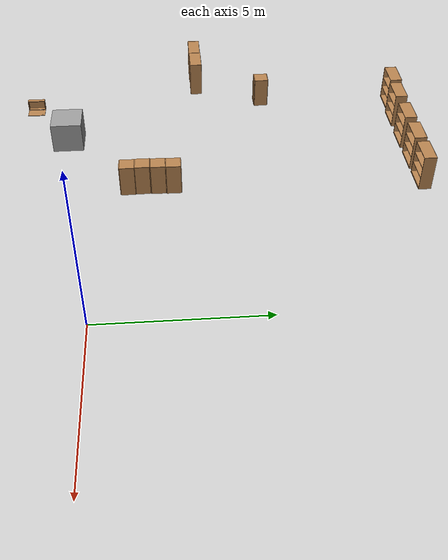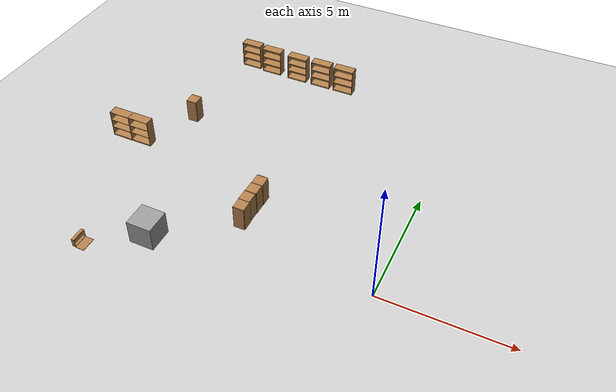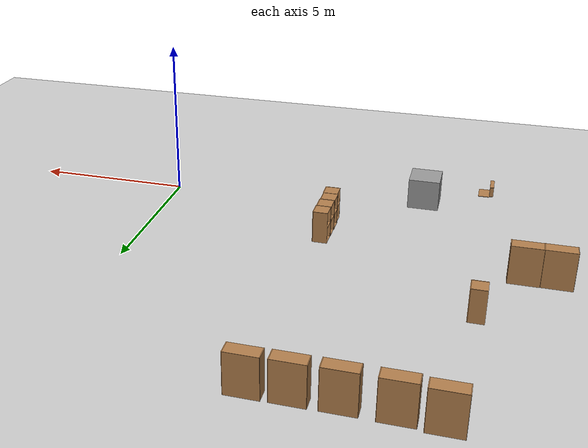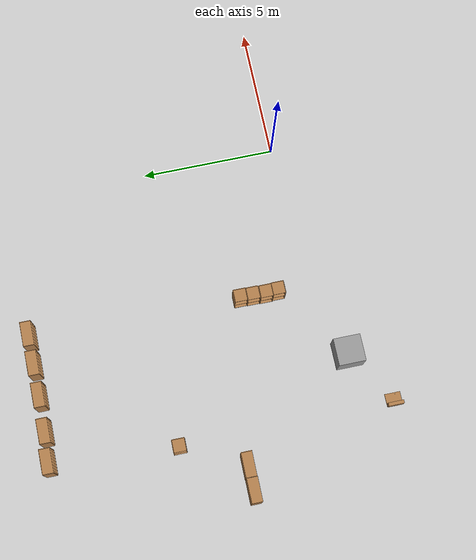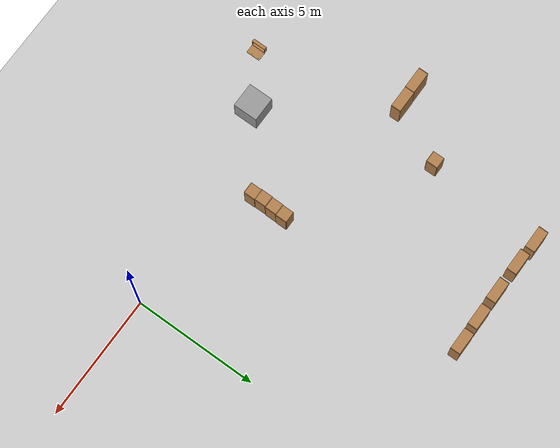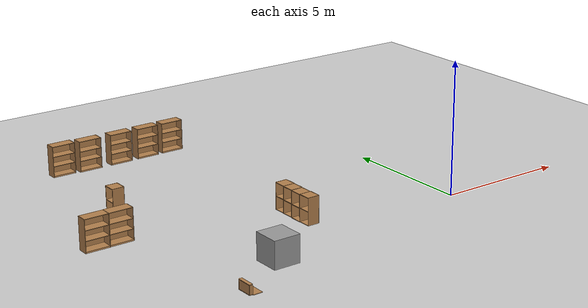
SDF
<sdf version="1.7">
 <world name="default">
  <model name="ground_plane">
   <static>1</static>
   <link name="link">
    <collision name="collision">
     <geometry><plane><normal>0 0 1</normal><size>100 100</size></plane></geometry>
     <surface>
      <contact><collide_bitmask>65535</collide_bitmask></contact>
      <friction><ode><mu>100</mu><mu2>50</mu2></ode></friction>
     </surface>
    </collision>
    <visual name="visual">
     <cast_shadows>0</cast_shadows>
     <geometry><plane><normal>0 0 1</normal><size>100 100</size></plane></geometry>
     <material>
      <script><uri>file://media/materials/scripts/gazebo.material</uri><name>Gazebo/Grey</name></script>
     </material>
    </visual>
   </link>
  </model>
  <model name="bookshelf">
   <static>1</static>
   <link name="link">
    <inertial><mass>1</mass></inertial>
    <collision name="back">
     <pose>0 0.005 0.6 0 -0 0</pose>
     <geometry><box><size>0.9 0.01 1.2</size></box></geometry>
    </collision>
    <visual name="visual1">
     <pose>0 0.005 0.6 0 -0 0</pose>
     <geometry><box><size>0.9 0.01 1.2</size></box></geometry>
     <material>
      <script><uri>file://media/materials/scripts/gazebo.material</uri><name>Gazebo/Wood</name></script>
     </material>
    </visual>
    <collision name="left_side">
     <pose>0.45 -0.195 0.6 0 -0 0</pose>
     <geometry><box><size>0.02 0.4 1.2</size></box></geometry>
    </collision>
    <visual name="visual2">
     <pose>0.45 -0.195 0.6 0 -0 0</pose>
     <geometry><box><size>0.02 0.4 1.2</size></box></geometry>
     <material>
      <script><uri>file://media/materials/scripts/gazebo.material</uri><name>Gazebo/Wood</name></script>
     </material>
    </visual>
    <collision name="right_side">
     <pose>-0.45 -0.195 0.6 0 -0 0</pose>
     <geometry><box><size>0.02 0.4 1.2</size></box></geometry>
    </collision>
    <visual name="visual3">
     <pose>-0.45 -0.195 0.6 0 -0 0</pose>
     <geometry><box><size>0.02 0.4 1.2</size></box></geometry>
     <material>
      <script><uri>file://media/materials/scripts/gazebo.material</uri><name>Gazebo/Wood</name></script>
     </material>
    </visual>
    <collision name="bottom">
     <pose>0 -0.195 0.03 0 -0 0</pose>
     <geometry><box><size>0.88 0.4 0.06</size></box></geometry>
    </collision>
    <visual name="visual4">
     <pose>0 -0.195 0.03 0 -0 0</pose>
     <geometry><box><size>0.88 0.4 0.06</size></box></geometry>
     <material>
      <script><uri>file://media/materials/scripts/gazebo.material</uri><name>Gazebo/Wood</name></script>
     </material>
    </visual>
    <collision name="top">
     <pose>0 -0.195 1.19 0 -0 0</pose>
     <geometry><box><size>0.88 0.4 0.02</size></box></geometry>
    </collision>
    <visual name="visual5">
     <pose>0 -0.195 1.19 0 -0 0</pose>
     <geometry><box><size>0.88 0.4 0.02</size></box></geometry>
     <material>
      <script><uri>file://media/materials/scripts/gazebo.material</uri><name>Gazebo/Wood</name></script>
     </material>
    </visual>
    <collision name="low_shelf">
     <pose>0 -0.195 0.43 0 -0 0</pose>
     <geometry><box><size>0.88 0.4 0.02</size></box></geometry>
    </collision>
    <visual name="visual6">
     <pose>0 -0.195 0.43 0 -0 0</pose>
     <geometry><box><size>0.88 0.4 0.02</size></box></geometry>
     <material>
      <script><uri>file://media/materials/scripts/gazebo.material</uri><name>Gazebo/Wood</name></script>
     </material>
    </visual>
    <collision name="high_shelf">
     <pose>0 -0.195 0.8 0 -0 0</pose>
     <geometry><box><size>0.88 0.4 0.02</size></box></geometry>
    </collision>
    <visual name="visual7">
     <pose>0 -0.195 0.8 0 -0 0</pose>
     <geometry><box><size>0.88 0.4 0.02</size></box></geometry>
     <material>
      <script><uri>file://media/materials/scripts/gazebo.material</uri><name>Gazebo/Wood</name></script>
     </material>
    </visual>
   </link>
   <pose>-10.0788 10.5753 0 0 -0 0</pose>
  </model>
  <model name="bookshelf_0">
   <static>1</static>
   <link name="link">
    <inertial><mass>1</mass></inertial>
    <collision name="back">
     <pose>0 0.005 0.6 0 -0 0</pose>
     <geometry><box><size>0.9 0.01 1.2</size></box></geometry>
    </collision>
    <visual name="visual1">
     <pose>0 0.005 0.6 0 -0 0</pose>
     <geometry><box><size>0.9 0.01 1.2</size></box></geometry>
     <material>
      <script><uri>file://media/materials/scripts/gazebo.material</uri><name>Gazebo/Wood</name></script>
     </material>
    </visual>
    <collision name="left_side">
     <pose>0.45 -0.195 0.6 0 -0 0</pose>
     <geometry><box><size>0.02 0.4 1.2</size></box></geometry>
    </collision>
    <visual name="visual2">
     <pose>0.45 -0.195 0.6 0 -0 0</pose>
     <geometry><box><size>0.02 0.4 1.2</size></box></geometry>
     <material>
      <script><uri>file://media/materials/scripts/gazebo.material</uri><name>Gazebo/Wood</name></script>
     </material>
    </visual>
    <collision name="right_side">
     <pose>-0.45 -0.195 0.6 0 -0 0</pose>
     <geometry><box><size>0.02 0.4 1.2</size></box></geometry>
    </collision>
    <visual name="visual3">
     <pose>-0.45 -0.195 0.6 0 -0 0</pose>
     <geometry><box><size>0.02 0.4 1.2</size></box></geometry>
     <material>
      <script><uri>file://media/materials/scripts/gazebo.material</uri><name>Gazebo/Wood</name></script>
     </material>
    </visual>
    <collision name="bottom">
     <pose>0 -0.195 0.03 0 -0 0</pose>
     <geometry><box><size>0.88 0.4 0.06</size></box></geometry>
    </collision>
    <visual name="visual4">
     <pose>0 -0.195 0.03 0 -0 0</pose>
     <geometry><box><size>0.88 0.4 0.06</size></box></geometry>
     <material>
      <script><uri>file://media/materials/scripts/gazebo.material</uri><name>Gazebo/Wood</name></script>
     </material>
    </visual>
    <collision name="top">
     <pose>0 -0.195 1.19 0 -0 0</pose>
     <geometry><box><size>0.88 0.4 0.02</size></box></geometry>
    </collision>
    <visual name="visual5">
     <pose>0 -0.195 1.19 0 -0 0</pose>
     <geometry><box><size>0.88 0.4 0.02</size></box></geometry>
     <material>
      <script><uri>file://media/materials/scripts/gazebo.material</uri><name>Gazebo/Wood</name></script>
     </material>
    </visual>
    <collision name="low_shelf">
     <pose>0 -0.195 0.43 0 -0 0</pose>
     <geometry><box><size>0.88 0.4 0.02</size></box></geometry>
    </collision>
    <visual name="visual6">
     <pose>0 -0.195 0.43 0 -0 0</pose>
     <geometry><box><size>0.88 0.4 0.02</size></box></geometry>
     <material>
      <script><uri>file://media/materials/scripts/gazebo.material</uri><name>Gazebo/Wood</name></script>
     </material>
    </visual>
    <collision name="high_shelf">
     <pose>0 -0.195 0.8 0 -0 0</pose>
     <geometry><box><size>0.88 0.4 0.02</size></box></geometry>
    </collision>
    <visual name="visual7">
     <pose>0 -0.195 0.8 0 -0 0</pose>
     <geometry><box><size>0.88 0.4 0.02</size></box></geometry>
     <material>
      <script><uri>file://media/materials/scripts/gazebo.material</uri><name>Gazebo/Wood</name></script>
     </material>
    </visual>
   </link>
   <pose>-9.01072 10.5031 0 0 -0 0</pose>
  </model>
  <model name="bookshelf_1">
   <static>1</static>
   <link name="link">
    <inertial><mass>1</mass></inertial>
    <collision name="back">
     <pose>0 0.005 0.6 0 -0 0</pose>
     <geometry><box><size>0.9 0.01 1.2</size></box></geometry>
    </collision>
    <visual name="visual1">
     <pose>0 0.005 0.6 0 -0 0</pose>
     <geometry><box><size>0.9 0.01 1.2</size></box></geometry>
     <material>
      <script><uri>file://media/materials/scripts/gazebo.material</uri><name>Gazebo/Wood</name></script>
     </material>
    </visual>
    <collision name="left_side">
     <pose>0.45 -0.195 0.6 0 -0 0</pose>
     <geometry><box><size>0.02 0.4 1.2</size></box></geometry>
    </collision>
    <visual name="visual2">
     <pose>0.45 -0.195 0.6 0 -0 0</pose>
     <geometry><box><size>0.02 0.4 1.2</size></box></geometry>
     <material>
      <script><uri>file://media/materials/scripts/gazebo.material</uri><name>Gazebo/Wood</name></script>
     </material>
    </visual>
    <collision name="right_side">
     <pose>-0.45 -0.195 0.6 0 -0 0</pose>
     <geometry><box><size>0.02 0.4 1.2</size></box></geometry>
    </collision>
    <visual name="visual3">
     <pose>-0.45 -0.195 0.6 0 -0 0</pose>
     <geometry><box><size>0.02 0.4 1.2</size></box></geometry>
     <material>
      <script><uri>file://media/materials/scripts/gazebo.material</uri><name>Gazebo/Wood</name></script>
     </material>
    </visual>
    <collision name="bottom">
     <pose>0 -0.195 0.03 0 -0 0</pose>
     <geometry><box><size>0.88 0.4 0.06</size></box></geometry>
    </collision>
    <visual name="visual4">
     <pose>0 -0.195 0.03 0 -0 0</pose>
     <geometry><box><size>0.88 0.4 0.06</size></box></geometry>
     <material>
      <script><uri>file://media/materials/scripts/gazebo.material</uri><name>Gazebo/Wood</name></script>
     </material>
    </visual>
    <collision name="top">
     <pose>0 -0.195 1.19 0 -0 0</pose>
     <geometry><box><size>0.88 0.4 0.02</size></box></geometry>
    </collision>
    <visual name="visual5">
     <pose>0 -0.195 1.19 0 -0 0</pose>
     <geometry><box><size>0.88 0.4 0.02</size></box></geometry>
     <material>
      <script><uri>file://media/materials/scripts/gazebo.material</uri><name>Gazebo/Wood</name></script>
     </material>
    </visual>
    <collision name="low_shelf">
     <pose>0 -0.195 0.43 0 -0 0</pose>
     <geometry><box><size>0.88 0.4 0.02</size></box></geometry>
    </collision>
    <visual name="visual6">
     <pose>0 -0.195 0.43 0 -0 0</pose>
     <geometry><box><size>0.88 0.4 0.02</size></box></geometry>
     <material>
      <script><uri>file://media/materials/scripts/gazebo.material</uri><name>Gazebo/Wood</name></script>
     </material>
    </visual>
    <collision name="high_shelf">
     <pose>0 -0.195 0.8 0 -0 0</pose>
     <geometry><box><size>0.88 0.4 0.02</size></box></geometry>
    </collision>
    <visual name="visual7">
     <pose>0 -0.195 0.8 0 -0 0</pose>
     <geometry><box><size>0.88 0.4 0.02</size></box></geometry>
     <material>
      <script><uri>file://media/materials/scripts/gazebo.material</uri><name>Gazebo/Wood</name></script>
     </material>
    </visual>
   </link>
   <pose>-7.70566 10.4883 0 0 -0 0</pose>
  </model>
  <model name="bookshelf_2">
   <static>1</static>
   <link name="link">
    <inertial><mass>1</mass></inertial>
    <collision name="back">
     <pose>0 0.005 0.6 0 -0 0</pose>
     <geometry><box><size>0.9 0.01 1.2</size></box></geometry>
    </collision>
    <visual name="visual1">
     <pose>0 0.005 0.6 0 -0 0</pose>
     <geometry><box><size>0.9 0.01 1.2</size></box></geometry>
     <material>
      <script><uri>file://media/materials/scripts/gazebo.material</uri><name>Gazebo/Wood</name></script>
     </material>
    </visual>
    <collision name="left_side">
     <pose>0.45 -0.195 0.6 0 -0 0</pose>
     <geometry><box><size>0.02 0.4 1.2</size></box></geometry>
    </collision>
    <visual name="visual2">
     <pose>0.45 -0.195 0.6 0 -0 0</pose>
     <geometry><box><size>0.02 0.4 1.2</size></box></geometry>
     <material>
      <script><uri>file://media/materials/scripts/gazebo.material</uri><name>Gazebo/Wood</name></script>
     </material>
    </visual>
    <collision name="right_side">
     <pose>-0.45 -0.195 0.6 0 -0 0</pose>
     <geometry><box><size>0.02 0.4 1.2</size></box></geometry>
    </collision>
    <visual name="visual3">
     <pose>-0.45 -0.195 0.6 0 -0 0</pose>
     <geometry><box><size>0.02 0.4 1.2</size></box></geometry>
     <material>
      <script><uri>file://media/materials/scripts/gazebo.material</uri><name>Gazebo/Wood</name></script>
     </material>
    </visual>
    <collision name="bottom">
     <pose>0 -0.195 0.03 0 -0 0</pose>
     <geometry><box><size>0.88 0.4 0.06</size></box></geometry>
    </collision>
    <visual name="visual4">
     <pose>0 -0.195 0.03 0 -0 0</pose>
     <geometry><box><size>0.88 0.4 0.06</size></box></geometry>
     <material>
      <script><uri>file://media/materials/scripts/gazebo.material</uri><name>Gazebo/Wood</name></script>
     </material>
    </visual>
    <collision name="top">
     <pose>0 -0.195 1.19 0 -0 0</pose>
     <geometry><box><size>0.88 0.4 0.02</size></box></geometry>
    </collision>
    <visual name="visual5">
     <pose>0 -0.195 1.19 0 -0 0</pose>
     <geometry><box><size>0.88 0.4 0.02</size></box></geometry>
     <material>
      <script><uri>file://media/materials/scripts/gazebo.material</uri><name>Gazebo/Wood</name></script>
     </material>
    </visual>
    <collision name="low_shelf">
     <pose>0 -0.195 0.43 0 -0 0</pose>
     <geometry><box><size>0.88 0.4 0.02</size></box></geometry>
    </collision>
    <visual name="visual6">
     <pose>0 -0.195 0.43 0 -0 0</pose>
     <geometry><box><size>0.88 0.4 0.02</size></box></geometry>
     <material>
      <script><uri>file://media/materials/scripts/gazebo.material</uri><name>Gazebo/Wood</name></script>
     </material>
    </visual>
    <collision name="high_shelf">
     <pose>0 -0.195 0.8 0 -0 0</pose>
     <geometry><box><size>0.88 0.4 0.02</size></box></geometry>
    </collision>
    <visual name="visual7">
     <pose>0 -0.195 0.8 0 -0 0</pose>
     <geometry><box><size>0.88 0.4 0.02</size></box></geometry>
     <material>
      <script><uri>file://media/materials/scripts/gazebo.material</uri><name>Gazebo/Wood</name></script>
     </material>
    </visual>
   </link>
   <pose>-6.53518 10.5005 0 0 -0 0</pose>
  </model>
  <model name="bookshelf_3">
   <static>1</static>
   <link name="link">
    <inertial><mass>1</mass></inertial>
    <collision name="back">
     <pose>0 0.005 0.6 0 -0 0</pose>
     <geometry><box><size>0.9 0.01 1.2</size></box></geometry>
    </collision>
    <visual name="visual1">
     <pose>0 0.005 0.6 0 -0 0</pose>
     <geometry><box><size>0.9 0.01 1.2</size></box></geometry>
     <material>
      <script><uri>file://media/materials/scripts/gazebo.material</uri><name>Gazebo/Wood</name></script>
     </material>
    </visual>
    <collision name="left_side">
     <pose>0.45 -0.195 0.6 0 -0 0</pose>
     <geometry><box><size>0.02 0.4 1.2</size></box></geometry>
    </collision>
    <visual name="visual2">
     <pose>0.45 -0.195 0.6 0 -0 0</pose>
     <geometry><box><size>0.02 0.4 1.2</size></box></geometry>
     <material>
      <script><uri>file://media/materials/scripts/gazebo.material</uri><name>Gazebo/Wood</name></script>
     </material>
    </visual>
    <collision name="right_side">
     <pose>-0.45 -0.195 0.6 0 -0 0</pose>
     <geometry><box><size>0.02 0.4 1.2</size></box></geometry>
    </collision>
    <visual name="visual3">
     <pose>-0.45 -0.195 0.6 0 -0 0</pose>
     <geometry><box><size>0.02 0.4 1.2</size></box></geometry>
     <material>
      <script><uri>file://media/materials/scripts/gazebo.material</uri><name>Gazebo/Wood</name></script>
     </material>
    </visual>
    <collision name="bottom">
     <pose>0 -0.195 0.03 0 -0 0</pose>
     <geometry><box><size>0.88 0.4 0.06</size></box></geometry>
    </collision>
    <visual name="visual4">
     <pose>0 -0.195 0.03 0 -0 0</pose>
     <geometry><box><size>0.88 0.4 0.06</size></box></geometry>
     <material>
      <script><uri>file://media/materials/scripts/gazebo.material</uri><name>Gazebo/Wood</name></script>
     </material>
    </visual>
    <collision name="top">
     <pose>0 -0.195 1.19 0 -0 0</pose>
     <geometry><box><size>0.88 0.4 0.02</size></box></geometry>
    </collision>
    <visual name="visual5">
     <pose>0 -0.195 1.19 0 -0 0</pose>
     <geometry><box><size>0.88 0.4 0.02</size></box></geometry>
     <material>
      <script><uri>file://media/materials/scripts/gazebo.material</uri><name>Gazebo/Wood</name></script>
     </material>
    </visual>
    <collision name="low_shelf">
     <pose>0 -0.195 0.43 0 -0 0</pose>
     <geometry><box><size>0.88 0.4 0.02</size></box></geometry>
    </collision>
    <visual name="visual6">
     <pose>0 -0.195 0.43 0 -0 0</pose>
     <geometry><box><size>0.88 0.4 0.02</size></box></geometry>
     <material>
      <script><uri>file://media/materials/scripts/gazebo.material</uri><name>Gazebo/Wood</name></script>
     </material>
    </visual>
    <collision name="high_shelf">
     <pose>0 -0.195 0.8 0 -0 0</pose>
     <geometry><box><size>0.88 0.4 0.02</size></box></geometry>
    </collision>
    <visual name="visual7">
     <pose>0 -0.195 0.8 0 -0 0</pose>
     <geometry><box><size>0.88 0.4 0.02</size></box></geometry>
     <material>
      <script><uri>file://media/materials/scripts/gazebo.material</uri><name>Gazebo/Wood</name></script>
     </material>
    </visual>
   </link>
   <pose>-5.4445 10.5119 0 0 -0 0</pose>
  </model>
  <model name="cabinet">
   <static>1</static>
   <link name="cabinet_bottom_plate">
    <inertial>
     <pose>0 0 -1 0 -0 0</pose>
     <inertia><ixx>2.05</ixx><ixy>0</ixy><ixz>0</ixz><iyy>2.05</iyy><iyz>0</iyz><izz>2.05</izz></inertia>
     <mass>25</mass>
    </inertial>
    <collision name="cabinet_bottom_plate_geom">
     <pose>0 0 0.01 0 -0 0</pose>
     <geometry><box><size>0.45 0.45 0.02</size></box></geometry>
    </collision>
    <visual name="cabinet_bottom_plate_geom_visual">
     <pose>0 0 0.01 0 -0 0</pose>
     <geometry><box><size>0.45 0.45 0.02</size></box></geometry>
     <material>
      <script><uri>file://media/materials/scripts/gazebo.material</uri><name>Gazebo/Wood</name></script>
     </material>
    </visual>
    <collision name="cabinet_bottom_plate_geom_cabinet_back_plate">
     <pose>0.235 0 0.51 0 -0 0</pose>
     <geometry><box><size>0.02 0.45 1.02</size></box></geometry>
    </collision>
    <visual name="cabinet_bottom_plate_geom_cabinet_back_plate_visual">
     <pose>0.235 0 0.51 0 -0 0</pose>
     <geometry><box><size>0.02 0.45 1.02</size></box></geometry>
     <material>
      <script><uri>file://media/materials/scripts/gazebo.material</uri><name>Gazebo/Wood</name></script>
     </material>
    </visual>
    <collision name="cabinet_bottom_plate_geom_cabinet_left_plate">
     <pose>0 0.235 0.51 0 -0 0</pose>
     <geometry><box><size>0.45 0.02 1.02</size></box></geometry>
    </collision>
    <visual name="cabinet_bottom_plate_geom_cabinet_left_plate_visual">
     <pose>0 0.235 0.51 0 -0 0</pose>
     <geometry><box><size>0.45 0.02 1.02</size></box></geometry>
     <material>
      <script><uri>file://media/materials/scripts/gazebo.material</uri><name>Gazebo/Wood</name></script>
     </material>
    </visual>
    <collision name="cabinet_bottom_plate_geom_cabinet_middle_plate">
     <pose>0 0 0.51 0 -0 0</pose>
     <geometry><box><size>0.45 0.45 0.02</size></box></geometry>
    </collision>
    <visual name="cabinet_bottom_plate_geom_cabinet_middle_plate_visual">
     <pose>0 0 0.51 0 -0 0</pose>
     <geometry><box><size>0.45 0.45 0.02</size></box></geometry>
     <material>
      <script><uri>file://media/materials/scripts/gazebo.material</uri><name>Gazebo/Wood</name></script>
     </material>
    </visual>
    <collision name="cabinet_bottom_plate_geom_cabinet_right_plate">
     <pose>0 -0.235 0.51 0 -0 0</pose>
     <geometry><box><size>0.45 0.02 1.02</size></box></geometry>
    </collision>
    <visual name="cabinet_bottom_plate_geom_cabinet_right_plate_visual">
     <pose>0 -0.235 0.51 0 -0 0</pose>
     <geometry><box><size>0.45 0.02 1.02</size></box></geometry>
     <material>
      <script><uri>file://media/materials/scripts/gazebo.material</uri><name>Gazebo/Wood</name></script>
     </material>
    </visual>
    <collision name="cabinet_bottom_plate_geom_cabinet_top_plate">
     <pose>0 0 1.01 0 -0 0</pose>
     <geometry><box><size>0.45 0.45 0.02</size></box></geometry>
    </collision>
    <visual name="cabinet_bottom_plate_geom_cabinet_top_plate_visual">
     <pose>0 0 1.01 0 -0 0</pose>
     <geometry><box><size>0.45 0.45 0.02</size></box></geometry>
     <material>
      <script><uri>file://media/materials/scripts/gazebo.material</uri><name>Gazebo/Wood</name></script>
     </material>
    </visual>
   </link>
   <pose>-10.4654 5.70058 0 0 -0 0</pose>
  </model>
  <model name="wooden_case">
   <link name="base">
    <pose>0 0 0.024 0 -0 0</pose>
    <inertial>
     <pose>-0.022184 0 0.171592 0 -0 0</pose>
     <mass>3.96264</mass>
     <inertia>
      <ixx>0.213536</ixx>
      <ixy>0</ixy>
      <ixz>0.000779377</ixz>
      <iyy>0.0708943</iyy>
      <iyz>0</iyz>
      <izz>0.154604</izz>
     </inertia>
    </inertial>
    <collision name="collision_back">
     <pose>-0.053975 0 0.1778 0 -0 0</pose>
     <geometry><box><size>0.01905 0.5461 0.3175</size></box></geometry>
     <surface>
      <contact>
       <poissons_ratio>0.347</poissons_ratio>
       <elastic_modulus>8.8e+09</elastic_modulus>
       <ode><kp>100000</kp><kd>100</kd><max_vel>100</max_vel><min_depth>0.001</min_depth></ode>
      </contact>
      <friction>
       <torsional>
        <coefficient>1</coefficient>
        <use_patch_radius>0</use_patch_radius>
        <surface_radius>0.01</surface_radius>
       </torsional>
      </friction>
     </surface>
    </collision>
    <visual name="visual_back">
     <pose>-0.053975 0 0.1778 0 -0 0</pose>
     <geometry><box><size>0.01905 0.5461 0.3175</size></box></geometry>
     <material>
      <script><uri>file://media/materials/scripts/gazebo.material</uri><name>Gazebo/Wood</name></script>
     </material>
    </visual>
    <collision name="collision_bottom">
     <pose>0 0 0.009525 0 -0 0</pose>
     <geometry><box><size>0.127 0.5842 0.01905</size></box></geometry>
     <surface>
      <contact>
       <poissons_ratio>0.347</poissons_ratio>
       <elastic_modulus>8.8e+09</elastic_modulus>
       <ode><kp>100000</kp><kd>100</kd><max_vel>100</max_vel><min_depth>0.001</min_depth></ode>
      </contact>
      <friction>
       <torsional>
        <coefficient>1</coefficient>
        <use_patch_radius>0</use_patch_radius>
        <surface_radius>0.01</surface_radius>
       </torsional>
      </friction>
     </surface>
    </collision>
    <visual name="visual_bottom">
     <pose>0 0 0.009525 0 -0 0</pose>
     <geometry><box><size>0.127 0.5842 0.01905</size></box></geometry>
     <material>
      <script><uri>file://media/materials/scripts/gazebo.material</uri><name>Gazebo/Wood</name></script>
     </material>
    </visual>
    <collision name="collision_top">
     <pose>0 0 0.346075 0 -0 0</pose>
     <geometry><box><size>0.127 0.5842 0.01905</size></box></geometry>
     <surface>
      <contact>
       <poissons_ratio>0.347</poissons_ratio>
       <elastic_modulus>8.8e+09</elastic_modulus>
       <ode><kp>100000</kp><kd>100</kd><max_vel>100</max_vel><min_depth>0.001</min_depth></ode>
      </contact>
      <friction>
       <torsional>
        <coefficient>1</coefficient>
        <use_patch_radius>0</use_patch_radius>
        <surface_radius>0.01</surface_radius>
       </torsional>
      </friction>
     </surface>
    </collision>
    <visual name="visual_top">
     <pose>0 0 0.346075 0 -0 0</pose>
     <geometry><box><size>0.127 0.5842 0.01905</size></box></geometry>
     <material>
      <script><uri>file://media/materials/scripts/gazebo.material</uri><name>Gazebo/Wood</name></script>
     </material>
    </visual>
    <collision name="collision_left">
     <pose>0 -0.282575 0.1778 0 -0 0</pose>
     <geometry><box><size>0.127 0.01905 0.3175</size></box></geometry>
     <surface>
      <contact>
       <poissons_ratio>0.347</poissons_ratio>
       <elastic_modulus>8.8e+09</elastic_modulus>
       <ode><kp>100000</kp><kd>100</kd><max_vel>100</max_vel><min_depth>0.001</min_depth></ode>
      </contact>
      <friction>
       <torsional>
        <coefficient>1</coefficient>
        <use_patch_radius>0</use_patch_radius>
        <surface_radius>0.01</surface_radius>
       </torsional>
      </friction>
     </surface>
    </collision>
    <visual name="visual_left">
     <pose>0 -0.282575 0.1778 0 -0 0</pose>
     <geometry><box><size>0.127 0.01905 0.3175</size></box></geometry>
     <material>
      <script><uri>file://media/materials/scripts/gazebo.material</uri><name>Gazebo/Wood</name></script>
     </material>
    </visual>
    <collision name="collision_right">
     <pose>0 0.282575 0.1778 0 -0 0</pose>
     <geometry><box><size>0.127 0.01905 0.3175</size></box></geometry>
     <surface>
      <contact>
       <poissons_ratio>0.347</poissons_ratio>
       <elastic_modulus>8.8e+09</elastic_modulus>
       <ode><kp>100000</kp><kd>100</kd><max_vel>100</max_vel><min_depth>0.001</min_depth></ode>
      </contact>
      <friction>
       <torsional>
        <coefficient>1</coefficient>
        <use_patch_radius>0</use_patch_radius>
        <surface_radius>0.01</surface_radius>
       </torsional>
      </friction>
     </surface>
    </collision>
    <visual name="visual_right">
     <pose>0 0.282575 0.1778 0 -0 0</pose>
     <geometry><box><size>0.127 0.01905 0.3175</size></box></geometry>
     <material>
      <script><uri>file://media/materials/scripts/gazebo.material</uri><name>Gazebo/Wood</name></script>
     </material>
    </visual>
    <collision name="collision_block_left">
     <pose>0.0095 -0.2151 -0.012 0 -0 0</pose>
     <geometry><box><size>0.108 0.05 0.024</size></box></geometry>
     <surface>
      <contact>
       <poissons_ratio>0.347</poissons_ratio>
       <elastic_modulus>8.8e+09</elastic_modulus>
       <ode><kp>100000</kp><kd>100</kd><max_vel>100</max_vel><min_depth>0.001</min_depth></ode>
      </contact>
      <friction>
       <torsional>
        <coefficient>1</coefficient>
        <use_patch_radius>0</use_patch_radius>
        <surface_radius>0.01</surface_radius>
       </torsional>
      </friction>
     </surface>
    </collision>
    <visual name="visual_block_left">
     <pose>0.0095 -0.2151 -0.012 0 -0 0</pose>
     <geometry><box><size>0.108 0.05 0.024</size></box></geometry>
     <material>
      <script><uri>file://media/materials/scripts/gazebo.material</uri><name>Gazebo/Wood</name></script>
     </material>
    </visual>
    <collision name="collision_block_right">
     <pose>0.0095 0.2151 -0.012 0 -0 0</pose>
     <geometry><box><size>0.108 0.05 0.024</size></box></geometry>
     <surface>
      <contact>
       <poissons_ratio>0.347</poissons_ratio>
       <elastic_modulus>8.8e+09</elastic_modulus>
       <ode><kp>100000</kp><kd>100</kd><max_vel>100</max_vel><min_depth>0.001</min_depth></ode>
      </contact>
      <friction>
       <torsional>
        <coefficient>1</coefficient>
        <use_patch_radius>0</use_patch_radius>
        <surface_radius>0.01</surface_radius>
       </torsional>
      </friction>
     </surface>
    </collision>
    <visual name="visual_block_right">
     <pose>0.0095 0.2151 -0.012 0 -0 0</pose>
     <geometry><box><size>0.108 0.05 0.024</size></box></geometry>
     <material>
      <script><uri>file://media/materials/scripts/gazebo.material</uri><name>Gazebo/Wood</name></script>
     </material>
    </visual>
   </link>
   <link name="lid">
    <pose>0.243775 0 0.009525 0 -0 0</pose>
    <inertial>
     <mass>1.97874</mass>
     <inertia>
      <ixx>0.0563367</ixx>
      <ixy>0</ixy>
      <ixz>0</ixz>
      <iyy>0.020911</iyy>
      <iyz>0</iyz>
      <izz>0.0771281</izz>
     </inertia>
    </inertial>
    <collision name="collision">
     <geometry><box><size>0.3556 0.5842 0.01905</size></box></geometry>
     <surface>
      <contact>
       <poissons_ratio>0.347</poissons_ratio>
       <elastic_modulus>8.8e+09</elastic_modulus>
       <ode><kp>100000</kp><kd>100</kd><max_vel>100</max_vel><min_depth>0.001</min_depth></ode>
      </contact>
      <friction>
       <torsional>
        <coefficient>1</coefficient>
        <use_patch_radius>0</use_patch_radius>
        <surface_radius>0.01</surface_radius>
       </torsional>
      </friction>
     </surface>
    </collision>
    <visual name="visual">
     <geometry><box><size>0.3556 0.5842 0.01905</size></box></geometry>
     <material>
      <script><uri>file://media/materials/scripts/gazebo.material</uri><name>Gazebo/Wood</name></script>
     </material>
    </visual>
    <visual name="tee_nut_1">
     <pose>0.122 -0.216 0 0 -0 0</pose>
     <geometry><cylinder><radius>0.00635</radius><length>0.0192405</length></cylinder></geometry>
     <material>
      <script><uri>file://media/materials/scripts/gazebo.material</uri><name>Gazebo/Grey</name></script>
     </material>
    </visual>
    <visual name="tee_nut_2">
     <pose>0.122 -0.088 0 0 -0 0</pose>
     <geometry><cylinder><radius>0.00635</radius><length>0.0192405</length></cylinder></geometry>
     <material>
      <script><uri>file://media/materials/scripts/gazebo.material</uri><name>Gazebo/Grey</name></script>
     </material>
    </visual>
    <visual name="tee_nut_3">
     <pose>0.122 0.088 0 0 -0 0</pose>
     <geometry><cylinder><radius>0.00635</radius><length>0.0192405</length></cylinder></geometry>
     <material>
      <script><uri>file://media/materials/scripts/gazebo.material</uri><name>Gazebo/Grey</name></script>
     </material>
    </visual>
    <visual name="tee_nut_4">
     <pose>0.122 0.216 0 0 -0 0</pose>
     <geometry><cylinder><radius>0.00635</radius><length>0.0192405</length></cylinder></geometry>
     <material>
      <script><uri>file://media/materials/scripts/gazebo.material</uri><name>Gazebo/Grey</name></script>
     </material>
    </visual>
   </link>
   <joint name="lid_hinge" type="revolute">
    <pose>-0.1778 0 0.01905 0 -0 0</pose>
    <parent>base</parent>
    <child>lid</child>
    <axis>
     <xyz>0 1 0</xyz>
     <limit><upper>0.523599</upper><lower>-1.5708</lower></limit>
     <dynamics><spring_reference>0</spring_reference><spring_stiffness>0</spring_stiffness></dynamics>
    </axis>
   </joint>
   <pose>-10.5056 -2.32012 -0.001057 0 -0.000428 0</pose>
  </model>
  <model name="cabinet_6">
   <static>1</static>
   <link name="cabinet_bottom_plate">
    <inertial>
     <pose>0 0 -1 0 -0 0</pose>
     <inertia><ixx>2.05</ixx><ixy>0</ixy><ixz>0</ixz><iyy>2.05</iyy><iyz>0</iyz><izz>2.05</izz></inertia>
     <mass>25</mass>
    </inertial>
    <collision name="cabinet_bottom_plate_geom">
     <pose>0 0 0.01 0 -0 0</pose>
     <geometry><box><size>0.45 0.45 0.02</size></box></geometry>
    </collision>
    <visual name="cabinet_bottom_plate_geom_visual">
     <pose>0 0 0.01 0 -0 0</pose>
     <geometry><box><size>0.45 0.45 0.02</size></box></geometry>
     <material>
      <script><uri>file://media/materials/scripts/gazebo.material</uri><name>Gazebo/Wood</name></script>
     </material>
    </visual>
    <collision name="cabinet_bottom_plate_geom_cabinet_back_plate">
     <pose>0.235 0 0.51 0 -0 0</pose>
     <geometry><box><size>0.02 0.45 1.02</size></box></geometry>
    </collision>
    <visual name="cabinet_bottom_plate_geom_cabinet_back_plate_visual">
     <pose>0.235 0 0.51 0 -0 0</pose>
     <geometry><box><size>0.02 0.45 1.02</size></box></geometry>
     <material>
      <script><uri>file://media/materials/scripts/gazebo.material</uri><name>Gazebo/Wood</name></script>
     </material>
    </visual>
    <collision name="cabinet_bottom_plate_geom_cabinet_left_plate">
     <pose>0 0.235 0.51 0 -0 0</pose>
     <geometry><box><size>0.45 0.02 1.02</size></box></geometry>
    </collision>
    <visual name="cabinet_bottom_plate_geom_cabinet_left_plate_visual">
     <pose>0 0.235 0.51 0 -0 0</pose>
     <geometry><box><size>0.45 0.02 1.02</size></box></geometry>
     <material>
      <script><uri>file://media/materials/scripts/gazebo.material</uri><name>Gazebo/Wood</name></script>
     </material>
    </visual>
    <collision name="cabinet_bottom_plate_geom_cabinet_middle_plate">
     <pose>0 0 0.51 0 -0 0</pose>
     <geometry><box><size>0.45 0.45 0.02</size></box></geometry>
    </collision>
    <visual name="cabinet_bottom_plate_geom_cabinet_middle_plate_visual">
     <pose>0 0 0.51 0 -0 0</pose>
     <geometry><box><size>0.45 0.45 0.02</size></box></geometry>
     <material>
      <script><uri>file://media/materials/scripts/gazebo.material</uri><name>Gazebo/Wood</name></script>
     </material>
    </visual>
    <collision name="cabinet_bottom_plate_geom_cabinet_right_plate">
     <pose>0 -0.235 0.51 0 -0 0</pose>
     <geometry><box><size>0.45 0.02 1.02</size></box></geometry>
    </collision>
    <visual name="cabinet_bottom_plate_geom_cabinet_right_plate_visual">
     <pose>0 -0.235 0.51 0 -0 0</pose>
     <geometry><box><size>0.45 0.02 1.02</size></box></geometry>
     <material>
      <script><uri>file://media/materials/scripts/gazebo.material</uri><name>Gazebo/Wood</name></script>
     </material>
    </visual>
    <collision name="cabinet_bottom_plate_geom_cabinet_top_plate">
     <pose>0 0 1.01 0 -0 0</pose>
     <geometry><box><size>0.45 0.45 0.02</size></box></geometry>
    </collision>
    <visual name="cabinet_bottom_plate_geom_cabinet_top_plate_visual">
     <pose>0 0 1.01 0 -0 0</pose>
     <geometry><box><size>0.45 0.45 0.02</size></box></geometry>
     <material>
      <script><uri>file://media/materials/scripts/gazebo.material</uri><name>Gazebo/Wood</name></script>
     </material>
    </visual>
   </link>
   <pose>-5.57885 2.44046 0 0 -0 0</pose>
  </model>
  <model name="cabinet_7">
   <static>1</static>
   <link name="cabinet_bottom_plate">
    <inertial>
     <pose>0 0 -1 0 -0 0</pose>
     <inertia><ixx>2.05</ixx><ixy>0</ixy><ixz>0</ixz><iyy>2.05</iyy><iyz>0</iyz><izz>2.05</izz></inertia>
     <mass>25</mass>
    </inertial>
    <collision name="cabinet_bottom_plate_geom">
     <pose>0 0 0.01 0 -0 0</pose>
     <geometry><box><size>0.45 0.45 0.02</size></box></geometry>
    </collision>
    <visual name="cabinet_bottom_plate_geom_visual">
     <pose>0 0 0.01 0 -0 0</pose>
     <geometry><box><size>0.45 0.45 0.02</size></box></geometry>
     <material>
      <script><uri>file://media/materials/scripts/gazebo.material</uri><name>Gazebo/Wood</name></script>
     </material>
    </visual>
    <collision name="cabinet_bottom_plate_geom_cabinet_back_plate">
     <pose>0.235 0 0.51 0 -0 0</pose>
     <geometry><box><size>0.02 0.45 1.02</size></box></geometry>
    </collision>
    <visual name="cabinet_bottom_plate_geom_cabinet_back_plate_visual">
     <pose>0.235 0 0.51 0 -0 0</pose>
     <geometry><box><size>0.02 0.45 1.02</size></box></geometry>
     <material>
      <script><uri>file://media/materials/scripts/gazebo.material</uri><name>Gazebo/Wood</name></script>
     </material>
    </visual>
    <collision name="cabinet_bottom_plate_geom_cabinet_left_plate">
     <pose>0 0.235 0.51 0 -0 0</pose>
     <geometry><box><size>0.45 0.02 1.02</size></box></geometry>
    </collision>
    <visual name="cabinet_bottom_plate_geom_cabinet_left_plate_visual">
     <pose>0 0.235 0.51 0 -0 0</pose>
     <geometry><box><size>0.45 0.02 1.02</size></box></geometry>
     <material>
      <script><uri>file://media/materials/scripts/gazebo.material</uri><name>Gazebo/Wood</name></script>
     </material>
    </visual>
    <collision name="cabinet_bottom_plate_geom_cabinet_middle_plate">
     <pose>0 0 0.51 0 -0 0</pose>
     <geometry><box><size>0.45 0.45 0.02</size></box></geometry>
    </collision>
    <visual name="cabinet_bottom_plate_geom_cabinet_middle_plate_visual">
     <pose>0 0 0.51 0 -0 0</pose>
     <geometry><box><size>0.45 0.45 0.02</size></box></geometry>
     <material>
      <script><uri>file://media/materials/scripts/gazebo.material</uri><name>Gazebo/Wood</name></script>
     </material>
    </visual>
    <collision name="cabinet_bottom_plate_geom_cabinet_right_plate">
     <pose>0 -0.235 0.51 0 -0 0</pose>
     <geometry><box><size>0.45 0.02 1.02</size></box></geometry>
    </collision>
    <visual name="cabinet_bottom_plate_geom_cabinet_right_plate_visual">
     <pose>0 -0.235 0.51 0 -0 0</pose>
     <geometry><box><size>0.45 0.02 1.02</size></box></geometry>
     <material>
      <script><uri>file://media/materials/scripts/gazebo.material</uri><name>Gazebo/Wood</name></script>
     </material>
    </visual>
    <collision name="cabinet_bottom_plate_geom_cabinet_top_plate">
     <pose>0 0 1.01 0 -0 0</pose>
     <geometry><box><size>0.45 0.45 0.02</size></box></geometry>
    </collision>
    <visual name="cabinet_bottom_plate_geom_cabinet_top_plate_visual">
     <pose>0 0 1.01 0 -0 0</pose>
     <geometry><box><size>0.45 0.45 0.02</size></box></geometry>
     <material>
      <script><uri>file://media/materials/scripts/gazebo.material</uri><name>Gazebo/Wood</name></script>
     </material>
    </visual>
   </link>
   <pose>-5.59325 1.96321 0 0 -0 0</pose>
  </model>
  <model name="cabinet_8">
   <static>1</static>
   <link name="cabinet_bottom_plate">
    <inertial>
     <pose>0 0 -1 0 -0 0</pose>
     <inertia><ixx>2.05</ixx><ixy>0</ixy><ixz>0</ixz><iyy>2.05</iyy><iyz>0</iyz><izz>2.05</izz></inertia>
     <mass>25</mass>
    </inertial>
    <collision name="cabinet_bottom_plate_geom">
     <pose>0 0 0.01 0 -0 0</pose>
     <geometry><box><size>0.45 0.45 0.02</size></box></geometry>
    </collision>
    <visual name="cabinet_bottom_plate_geom_visual">
     <pose>0 0 0.01 0 -0 0</pose>
     <geometry><box><size>0.45 0.45 0.02</size></box></geometry>
     <material>
      <script><uri>file://media/materials/scripts/gazebo.material</uri><name>Gazebo/Wood</name></script>
     </material>
    </visual>
    <collision name="cabinet_bottom_plate_geom_cabinet_back_plate">
     <pose>0.235 0 0.51 0 -0 0</pose>
     <geometry><box><size>0.02 0.45 1.02</size></box></geometry>
    </collision>
    <visual name="cabinet_bottom_plate_geom_cabinet_back_plate_visual">
     <pose>0.235 0 0.51 0 -0 0</pose>
     <geometry><box><size>0.02 0.45 1.02</size></box></geometry>
     <material>
      <script><uri>file://media/materials/scripts/gazebo.material</uri><name>Gazebo/Wood</name></script>
     </material>
    </visual>
    <collision name="cabinet_bottom_plate_geom_cabinet_left_plate">
     <pose>0 0.235 0.51 0 -0 0</pose>
     <geometry><box><size>0.45 0.02 1.02</size></box></geometry>
    </collision>
    <visual name="cabinet_bottom_plate_geom_cabinet_left_plate_visual">
     <pose>0 0.235 0.51 0 -0 0</pose>
     <geometry><box><size>0.45 0.02 1.02</size></box></geometry>
     <material>
      <script><uri>file://media/materials/scripts/gazebo.material</uri><name>Gazebo/Wood</name></script>
     </material>
    </visual>
    <collision name="cabinet_bottom_plate_geom_cabinet_middle_plate">
     <pose>0 0 0.51 0 -0 0</pose>
     <geometry><box><size>0.45 0.45 0.02</size></box></geometry>
    </collision>
    <visual name="cabinet_bottom_plate_geom_cabinet_middle_plate_visual">
     <pose>0 0 0.51 0 -0 0</pose>
     <geometry><box><size>0.45 0.45 0.02</size></box></geometry>
     <material>
      <script><uri>file://media/materials/scripts/gazebo.material</uri><name>Gazebo/Wood</name></script>
     </material>
    </visual>
    <collision name="cabinet_bottom_plate_geom_cabinet_right_plate">
     <pose>0 -0.235 0.51 0 -0 0</pose>
     <geometry><box><size>0.45 0.02 1.02</size></box></geometry>
    </collision>
    <visual name="cabinet_bottom_plate_geom_cabinet_right_plate_visual">
     <pose>0 -0.235 0.51 0 -0 0</pose>
     <geometry><box><size>0.45 0.02 1.02</size></box></geometry>
     <material>
      <script><uri>file://media/materials/scripts/gazebo.material</uri><name>Gazebo/Wood</name></script>
     </material>
    </visual>
    <collision name="cabinet_bottom_plate_geom_cabinet_top_plate">
     <pose>0 0 1.01 0 -0 0</pose>
     <geometry><box><size>0.45 0.45 0.02</size></box></geometry>
    </collision>
    <visual name="cabinet_bottom_plate_geom_cabinet_top_plate_visual">
     <pose>0 0 1.01 0 -0 0</pose>
     <geometry><box><size>0.45 0.45 0.02</size></box></geometry>
     <material>
      <script><uri>file://media/materials/scripts/gazebo.material</uri><name>Gazebo/Wood</name></script>
     </material>
    </visual>
   </link>
   <pose>-5.60834 1.47817 0 0 -0 0</pose>
  </model>
  <model name="cabinet_9">
   <static>1</static>
   <link name="cabinet_bottom_plate">
    <inertial>
     <pose>0 0 -1 0 -0 0</pose>
     <inertia><ixx>2.05</ixx><ixy>0</ixy><ixz>0</ixz><iyy>2.05</iyy><iyz>0</iyz><izz>2.05</izz></inertia>
     <mass>25</mass>
    </inertial>
    <collision name="cabinet_bottom_plate_geom">
     <pose>0 0 0.01 0 -0 0</pose>
     <geometry><box><size>0.45 0.45 0.02</size></box></geometry>
    </collision>
    <visual name="cabinet_bottom_plate_geom_visual">
     <pose>0 0 0.01 0 -0 0</pose>
     <geometry><box><size>0.45 0.45 0.02</size></box></geometry>
     <material>
      <script><uri>file://media/materials/scripts/gazebo.material</uri><name>Gazebo/Wood</name></script>
     </material>
    </visual>
    <collision name="cabinet_bottom_plate_geom_cabinet_back_plate">
     <pose>0.235 0 0.51 0 -0 0</pose>
     <geometry><box><size>0.02 0.45 1.02</size></box></geometry>
    </collision>
    <visual name="cabinet_bottom_plate_geom_cabinet_back_plate_visual">
     <pose>0.235 0 0.51 0 -0 0</pose>
     <geometry><box><size>0.02 0.45 1.02</size></box></geometry>
     <material>
      <script><uri>file://media/materials/scripts/gazebo.material</uri><name>Gazebo/Wood</name></script>
     </material>
    </visual>
    <collision name="cabinet_bottom_plate_geom_cabinet_left_plate">
     <pose>0 0.235 0.51 0 -0 0</pose>
     <geometry><box><size>0.45 0.02 1.02</size></box></geometry>
    </collision>
    <visual name="cabinet_bottom_plate_geom_cabinet_left_plate_visual">
     <pose>0 0.235 0.51 0 -0 0</pose>
     <geometry><box><size>0.45 0.02 1.02</size></box></geometry>
     <material>
      <script><uri>file://media/materials/scripts/gazebo.material</uri><name>Gazebo/Wood</name></script>
     </material>
    </visual>
    <collision name="cabinet_bottom_plate_geom_cabinet_middle_plate">
     <pose>0 0 0.51 0 -0 0</pose>
     <geometry><box><size>0.45 0.45 0.02</size></box></geometry>
    </collision>
    <visual name="cabinet_bottom_plate_geom_cabinet_middle_plate_visual">
     <pose>0 0 0.51 0 -0 0</pose>
     <geometry><box><size>0.45 0.45 0.02</size></box></geometry>
     <material>
      <script><uri>file://media/materials/scripts/gazebo.material</uri><name>Gazebo/Wood</name></script>
     </material>
    </visual>
    <collision name="cabinet_bottom_plate_geom_cabinet_right_plate">
     <pose>0 -0.235 0.51 0 -0 0</pose>
     <geometry><box><size>0.45 0.02 1.02</size></box></geometry>
    </collision>
    <visual name="cabinet_bottom_plate_geom_cabinet_right_plate_visual">
     <pose>0 -0.235 0.51 0 -0 0</pose>
     <geometry><box><size>0.45 0.02 1.02</size></box></geometry>
     <material>
      <script><uri>file://media/materials/scripts/gazebo.material</uri><name>Gazebo/Wood</name></script>
     </material>
    </visual>
    <collision name="cabinet_bottom_plate_geom_cabinet_top_plate">
     <pose>0 0 1.01 0 -0 0</pose>
     <geometry><box><size>0.45 0.45 0.02</size></box></geometry>
    </collision>
    <visual name="cabinet_bottom_plate_geom_cabinet_top_plate_visual">
     <pose>0 0 1.01 0 -0 0</pose>
     <geometry><box><size>0.45 0.45 0.02</size></box></geometry>
     <material>
      <script><uri>file://media/materials/scripts/gazebo.material</uri><name>Gazebo/Wood</name></script>
     </material>
    </visual>
   </link>
   <pose>-5.59323 1.01061 0 0 -0 0</pose>
  </model>
  <model name="bookshelf_7">
   <static>1</static>
   <link name="link">
    <inertial><mass>1</mass></inertial>
    <collision name="back">
     <pose>0 0.005 0.6 0 -0 0</pose>
     <geometry><box><size>0.9 0.01 1.2</size></box></geometry>
    </collision>
    <visual name="visual1">
     <pose>0 0.005 0.6 0 -0 0</pose>
     <geometry><box><size>0.9 0.01 1.2</size></box></geometry>
     <material>
      <script><uri>file://media/materials/scripts/gazebo.material</uri><name>Gazebo/Wood</name></script>
     </material>
    </visual>
    <collision name="left_side">
     <pose>0.45 -0.195 0.6 0 -0 0</pose>
     <geometry><box><size>0.02 0.4 1.2</size></box></geometry>
    </collision>
    <visual name="visual2">
     <pose>0.45 -0.195 0.6 0 -0 0</pose>
     <geometry><box><size>0.02 0.4 1.2</size></box></geometry>
     <material>
      <script><uri>file://media/materials/scripts/gazebo.material</uri><name>Gazebo/Wood</name></script>
     </material>
    </visual>
    <collision name="right_side">
     <pose>-0.45 -0.195 0.6 0 -0 0</pose>
     <geometry><box><size>0.02 0.4 1.2</size></box></geometry>
    </collision>
    <visual name="visual3">
     <pose>-0.45 -0.195 0.6 0 -0 0</pose>
     <geometry><box><size>0.02 0.4 1.2</size></box></geometry>
     <material>
      <script><uri>file://media/materials/scripts/gazebo.material</uri><name>Gazebo/Wood</name></script>
     </material>
    </visual>
    <collision name="bottom">
     <pose>0 -0.195 0.03 0 -0 0</pose>
     <geometry><box><size>0.88 0.4 0.06</size></box></geometry>
    </collision>
    <visual name="visual4">
     <pose>0 -0.195 0.03 0 -0 0</pose>
     <geometry><box><size>0.88 0.4 0.06</size></box></geometry>
     <material>
      <script><uri>file://media/materials/scripts/gazebo.material</uri><name>Gazebo/Wood</name></script>
     </material>
    </visual>
    <collision name="top">
     <pose>0 -0.195 1.19 0 -0 0</pose>
     <geometry><box><size>0.88 0.4 0.02</size></box></geometry>
    </collision>
    <visual name="visual5">
     <pose>0 -0.195 1.19 0 -0 0</pose>
     <geometry><box><size>0.88 0.4 0.02</size></box></geometry>
     <material>
      <script><uri>file://media/materials/scripts/gazebo.material</uri><name>Gazebo/Wood</name></script>
     </material>
    </visual>
    <collision name="low_shelf">
     <pose>0 -0.195 0.43 0 -0 0</pose>
     <geometry><box><size>0.88 0.4 0.02</size></box></geometry>
    </collision>
    <visual name="visual6">
     <pose>0 -0.195 0.43 0 -0 0</pose>
     <geometry><box><size>0.88 0.4 0.02</size></box></geometry>
     <material>
      <script><uri>file://media/materials/scripts/gazebo.material</uri><name>Gazebo/Wood</name></script>
     </material>
    </visual>
    <collision name="high_shelf">
     <pose>0 -0.195 0.8 0 -0 0</pose>
     <geometry><box><size>0.88 0.4 0.02</size></box></geometry>
    </collision>
    <visual name="visual7">
     <pose>0 -0.195 0.8 0 -0 0</pose>
     <geometry><box><size>0.88 0.4 0.02</size></box></geometry>
     <material>
      <script><uri>file://media/materials/scripts/gazebo.material</uri><name>Gazebo/Wood</name></script>
     </material>
    </visual>
   </link>
   <pose>-11.6248 3.61785 0 0 -0 0</pose>
  </model>
  <model name="bookshelf_8">
   <static>1</static>
   <link name="link">
    <inertial><mass>1</mass></inertial>
    <collision name="back">
     <pose>0 0.005 0.6 0 -0 0</pose>
     <geometry><box><size>0.9 0.01 1.2</size></box></geometry>
    </collision>
    <visual name="visual1">
     <pose>0 0.005 0.6 0 -0 0</pose>
     <geometry><box><size>0.9 0.01 1.2</size></box></geometry>
     <material>
      <script><uri>file://media/materials/scripts/gazebo.material</uri><name>Gazebo/Wood</name></script>
     </material>
    </visual>
    <collision name="left_side">
     <pose>0.45 -0.195 0.6 0 -0 0</pose>
     <geometry><box><size>0.02 0.4 1.2</size></box></geometry>
    </collision>
    <visual name="visual2">
     <pose>0.45 -0.195 0.6 0 -0 0</pose>
     <geometry><box><size>0.02 0.4 1.2</size></box></geometry>
     <material>
      <script><uri>file://media/materials/scripts/gazebo.material</uri><name>Gazebo/Wood</name></script>
     </material>
    </visual>
    <collision name="right_side">
     <pose>-0.45 -0.195 0.6 0 -0 0</pose>
     <geometry><box><size>0.02 0.4 1.2</size></box></geometry>
    </collision>
    <visual name="visual3">
     <pose>-0.45 -0.195 0.6 0 -0 0</pose>
     <geometry><box><size>0.02 0.4 1.2</size></box></geometry>
     <material>
      <script><uri>file://media/materials/scripts/gazebo.material</uri><name>Gazebo/Wood</name></script>
     </material>
    </visual>
    <collision name="bottom">
     <pose>0 -0.195 0.03 0 -0 0</pose>
     <geometry><box><size>0.88 0.4 0.06</size></box></geometry>
    </collision>
    <visual name="visual4">
     <pose>0 -0.195 0.03 0 -0 0</pose>
     <geometry><box><size>0.88 0.4 0.06</size></box></geometry>
     <material>
      <script><uri>file://media/materials/scripts/gazebo.material</uri><name>Gazebo/Wood</name></script>
     </material>
    </visual>
    <collision name="top">
     <pose>0 -0.195 1.19 0 -0 0</pose>
     <geometry><box><size>0.88 0.4 0.02</size></box></geometry>
    </collision>
    <visual name="visual5">
     <pose>0 -0.195 1.19 0 -0 0</pose>
     <geometry><box><size>0.88 0.4 0.02</size></box></geometry>
     <material>
      <script><uri>file://media/materials/scripts/gazebo.material</uri><name>Gazebo/Wood</name></script>
     </material>
    </visual>
    <collision name="low_shelf">
     <pose>0 -0.195 0.43 0 -0 0</pose>
     <geometry><box><size>0.88 0.4 0.02</size></box></geometry>
    </collision>
    <visual name="visual6">
     <pose>0 -0.195 0.43 0 -0 0</pose>
     <geometry><box><size>0.88 0.4 0.02</size></box></geometry>
     <material>
      <script><uri>file://media/materials/scripts/gazebo.material</uri><name>Gazebo/Wood</name></script>
     </material>
    </visual>
    <collision name="high_shelf">
     <pose>0 -0.195 0.8 0 -0 0</pose>
     <geometry><box><size>0.88 0.4 0.02</size></box></geometry>
    </collision>
    <visual name="visual7">
     <pose>0 -0.195 0.8 0 -0 0</pose>
     <geometry><box><size>0.88 0.4 0.02</size></box></geometry>
     <material>
      <script><uri>file://media/materials/scripts/gazebo.material</uri><name>Gazebo/Wood</name></script>
     </material>
    </visual>
   </link>
   <pose>-12.5231 3.60734 0 0 -0 0</pose>
  </model>
  <model name="unit_box">
   <pose>-8.3515 -1.01999 0.499995 0 1e-05 0</pose>
   <link name="link">
    <inertial>
     <mass>1</mass>
     <inertia>
      <ixx>0.166667</ixx>
      <ixy>0</ixy>
      <ixz>0</ixz>
      <iyy>0.166667</iyy>
      <iyz>0</iyz>
      <izz>0.166667</izz>
     </inertia>
    </inertial>
    <collision name="collision"><geometry><box><size>1 1 1</size></box></geometry></collision>
    <visual name="visual">
     <geometry><box><size>1 1 1</size></box></geometry>
     <material>
      <script><name>Gazebo/Grey</name><uri>file://media/materials/scripts/gazebo.material</uri></script>
     </material>
    </visual>
   </link>
  </model>
 </world>
</sdf>
